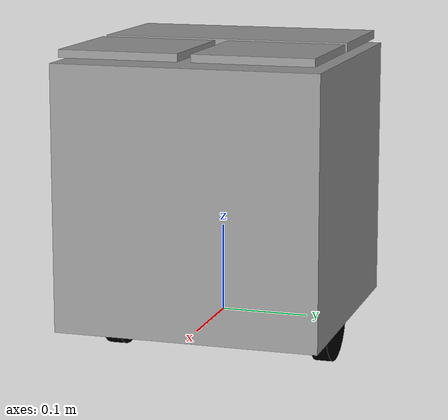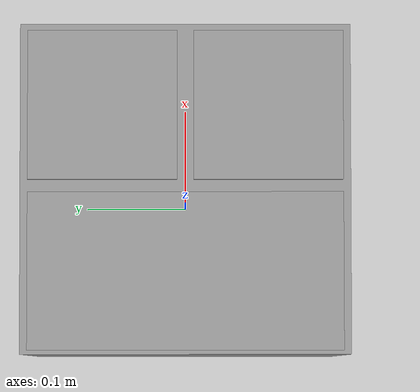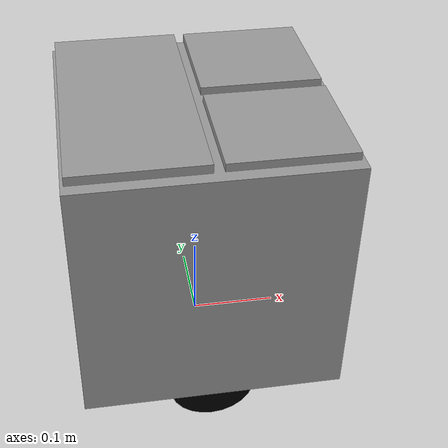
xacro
<robot xmlns:xacro="http://ros.org/wiki/xacro" name="vsss_robot">

    <!-- Parameters -->
    <xacro:property name="wheel_radius" value="0.05"/>
    <xacro:property name="wheel_width" value="0.02"/>
    <xacro:property name="wheel_separation" value="0.25"/>
    <xacro:property name="body_size" value="0.3"/>

    <!-- Base Link -->
    <link name="base_link">
        <visual>
            <origin xyz="0 0 ${body_size / 2}" rpy="0 0 0"/>
            <geometry>
                <box size="${body_size} ${body_size} ${body_size}"/>
            </geometry>
            <material name="Gray">
                <color rgba="0.6 0.6 0.6 1.0"/>
            </material>
        </visual>
        <collision>
            <geometry>
                <box size="${body_size} ${body_size} 0.1"/>
            </geometry>
        </collision>
        <inertial>
            <mass value="1.0"/>
            <inertia ixx="0.01" ixy="0.0" ixz="0.0" iyy="0.01" iyz="0.0" izz="0.01"/>
        </inertial>
    </link>

    <!-- Left Wheel -->
    <link name="left_wheel_link">
        <visual>
            <geometry>
                <cylinder radius="${wheel_radius}" length="${wheel_width}"/>
            </geometry>
            <origin rpy="0 0 0"/>
            <material name="Black">
                <color rgba="0.0 0.0 0.0 1.0"/>
            </material>
        </visual>
        <collision>
            <geometry>
                <cylinder radius="${wheel_radius}" length="${wheel_width}"/>
            </geometry>
            <origin rpy="0 0 0"/>
        </collision>
        <inertial>
            <mass value="0.2"/>
            <inertia ixx="0.001" ixy="0.0" ixz="0.0" iyy="0.001" iyz="0.0" izz="0.001"/>
        </inertial>
    </link>

    <!-- Right Wheel -->
    <link name="right_wheel_link">
        <visual>
            <geometry>
                <cylinder radius="${wheel_radius}" length="${wheel_width}"/>
            </geometry>
            <origin rpy="0 0 0"/>
            <material name="Black">
                <color rgba="0.0 0.0 0.0 1.0"/>
            </material>
        </visual>
        <collision>
            <geometry>
                <cylinder radius="${wheel_radius}" length="${wheel_width}"/>
            </geometry>
            <origin rpy="0 0 0"/>
        </collision>
        <inertial>
            <mass value="0.2"/>
            <inertia ixx="0.001" ixy="0.0" ixz="0.0" iyy="0.001" iyz="0.0" izz="0.001"/>
        </inertial>
    </link>

    <!-- Big plate-->
    <link name="dominant_plate_link">
        <visual>
            <geometry>
                <box size="${(body_size / 2) * 0.95} ${(body_size) * 0.95} 0.01"/>
            </geometry>
            <origin rpy="0 0 0"/>
            <material name="Gray">
                <color rgba="0.6 0.6 0.6 1.0"/>
            </material>
        </visual>
    </link>

    <!-- Small plate 1-->
    <link name="small_plate_1_link">
        <visual>
            <geometry>
                <box size="${(body_size / 2) * 0.9} ${(body_size / 2) * 0.9} 0.009"/>
            </geometry>
            <origin rpy="0 0 0"/>
            <material name="Gray">
                <color rgba="0.6 0.6 0.6 1.0"/>
            </material>
        </visual>
    </link>

    <!-- Small plate 2-->
    <link name="small_plate_2_link">
        <visual>
            <geometry>
                <box size="${(body_size / 2) * 0.9} ${(body_size / 2) * 0.9} 0.009"/>
            </geometry>
            <origin rpy="0 0 0"/>
            <material name="Gray">
                <color rgba="0.6 0.6 0.6 1.0"/>
            </material>
        </visual>
    </link>

    <!-- Wheel Joints -->
    <joint name="left_wheel_joint" type="continuous">
        <parent link="base_link"/>
        <child link="left_wheel_link"/>
        <origin xyz="0 -${wheel_separation/2} 0" rpy="1.57 0 0"/>
        <axis xyz="0 0 1"/>
    </joint>

    <joint name="right_wheel_joint" type="continuous">
        <parent link="base_link"/>
        <child link="right_wheel_link"/>
        <origin xyz="0 ${wheel_separation/2} 0" rpy="1.57 0 0"/>
        <axis xyz="0 0 1"/>
    </joint>

    <joint name="dominant_plate_joint" type="fixed">
        <parent link="base_link"/>
        <child link="dominant_plate_link"/>
        <origin xyz="${-body_size / 4} 0.0 ${body_size + 0.01}" rpy="0.0 0.0 0.0"/>
        <axis xyz="0 0 1"/>
    </joint>

    <joint name="small_plate_1_joint" type="fixed">
        <parent link="base_link"/>
        <child link="small_plate_1_link"/>
        <origin xyz="${body_size / 4} ${body_size / 4} ${body_size + 0.01}" rpy="0.0 0.0 0.0"/>
        <axis xyz="0 0 1"/>
    </joint>

    <joint name="small_plate_2_joint" type="fixed">
        <parent link="base_link"/>
        <child link="small_plate_2_link"/>
        <origin xyz="${body_size / 4} ${-body_size / 4} ${body_size + 0.01}" rpy="0.0 0.0 0.0"/>
        <axis xyz="0 0 1"/>
    </joint>

    <ros2_control name="GazeboSystem" type="system">
        <hardware>
            <plugin>gazebo_ros2_control/GazeboSystem</plugin>
        </hardware>

        <joint name="left_wheel_joint">
            <command_interface name="velocity"/>
            <state_interface name="velocity"/>
        </joint>

        <joint name="right_wheel_joint">
            <command_interface name="velocity"/>
            <state_interface name="velocity"/>
        </joint>
    </ros2_control>

    <!-- Gazebo Diff Drive Plugin -->
    <gazebo>
        <plugin name="diff_drive_controller" filename="libgazebo_ros_diff_drive.so">
            <left_joint>left_wheel_joint</left_joint>
            <right_joint>right_wheel_joint</right_joint>
            <wheel_separation>0.3</wheel_separation>
            <wheel_radius>0.05</wheel_radius>
            <wheel_diameter>0.1</wheel_diameter>
            <publish_odom>true</publish_odom>
            <odom_topic>odom</odom_topic>
            <cmd_vel_topic>cmd_vel</cmd_vel_topic>
            <robot_base_frame>base_link</robot_base_frame>
        </plugin>
    </gazebo>

    <!-- Gazebo Material -->
    <gazebo reference="base_link">
        <material>Gazebo/Black</material>
    </gazebo>
    <gazebo reference="left_wheel_link">
        <material>Gazebo/Black</material>
    </gazebo>
    <gazebo reference="right_wheel_link">
        <material>Gazebo/Black</material>
    </gazebo>

    <gazebo reference="dominant_plate_link">
        <material>Gazebo/Yellow</material>
    </gazebo>

    <gazebo reference="small_plate_1_link">
        <material>Gazebo/Green</material>
    </gazebo>

    <gazebo reference="small_plate_2_link">
        <material>Gazebo/Pink</material>
    </gazebo>

</robot>
